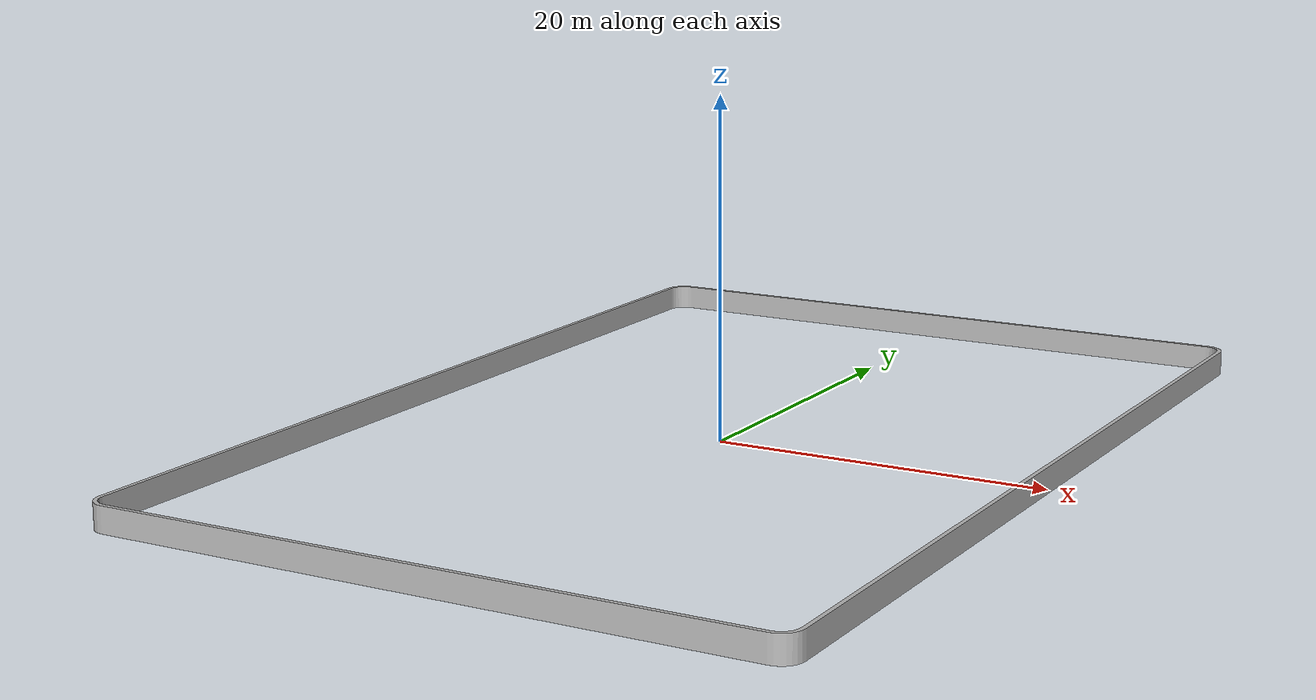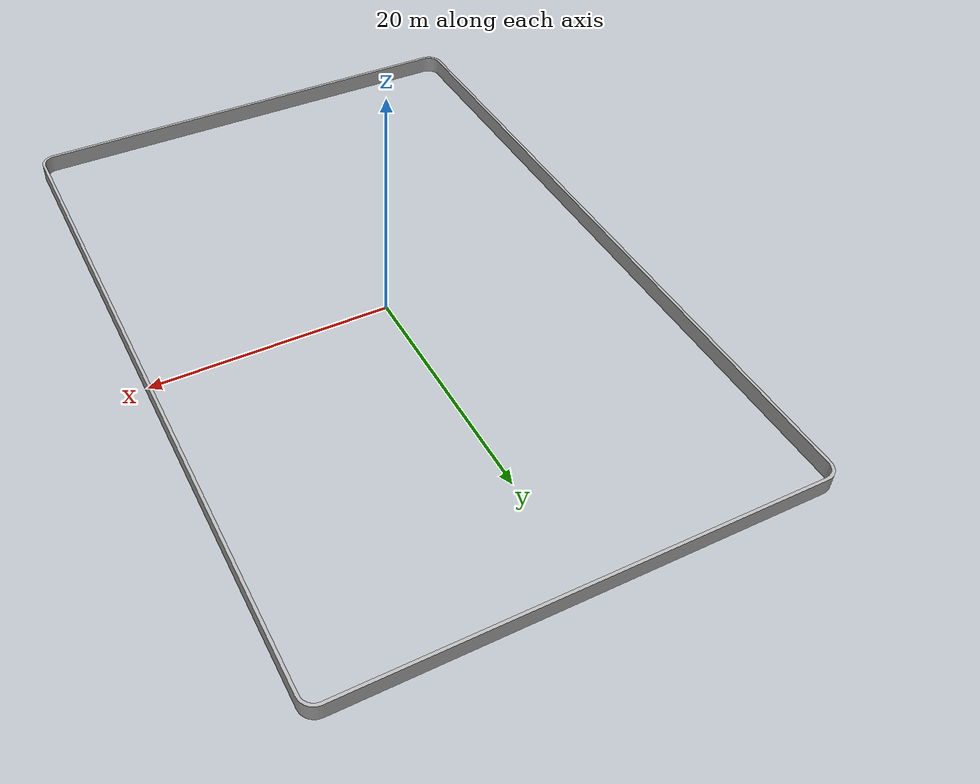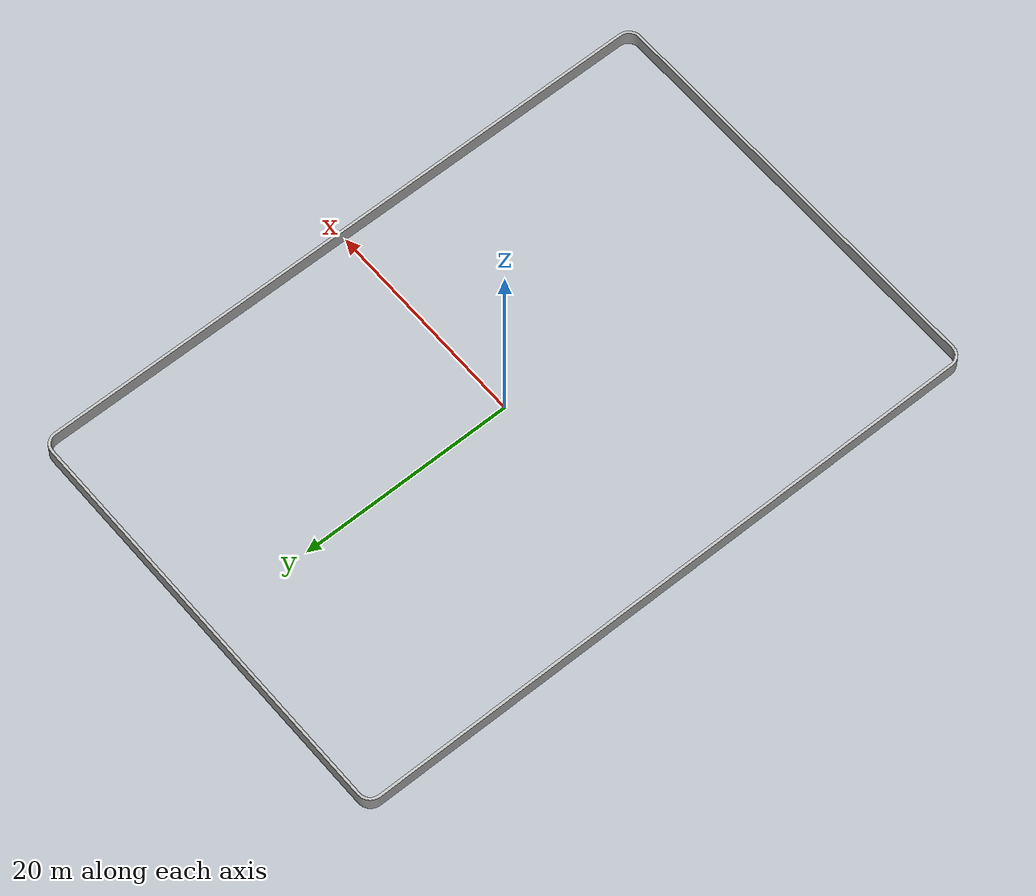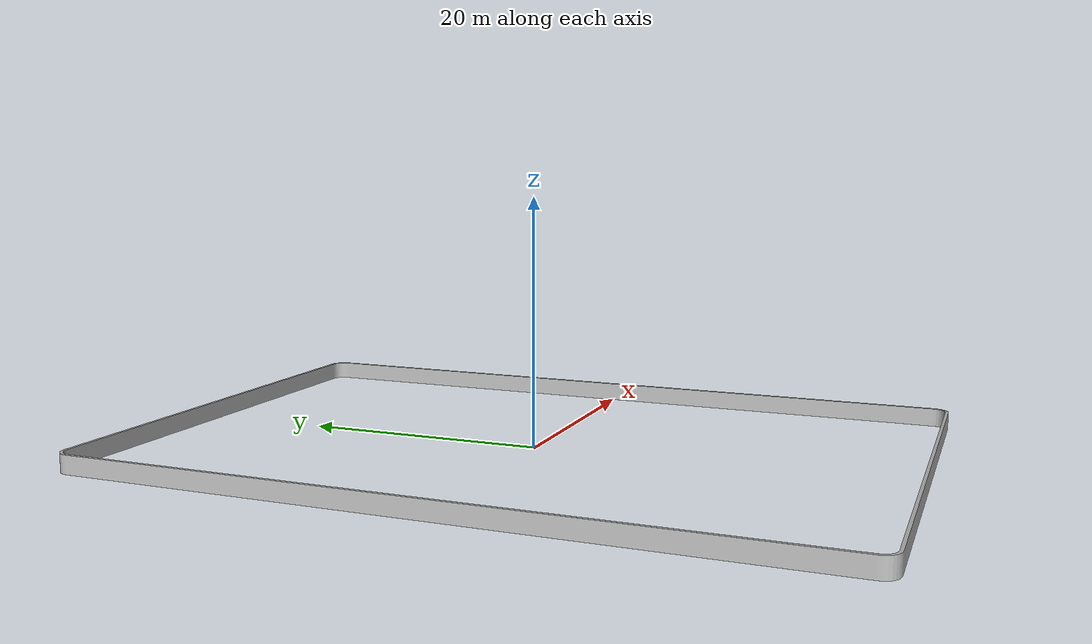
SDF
<?xml version="1.0" ?>
<sdf version="1.4">
  <model name="border">
    <static>true</static>
    <link name="link">
      <collision name="collision">
        <geometry>
          <mesh>
            <uri>model://border/meshes/border.DAE</uri>
          </mesh>
        </geometry>
      </collision>
      <visual name="visual">
        <cast_shadows>true</cast_shadows>
        <geometry>
          <mesh>
            <uri>model://border/meshes/border.DAE</uri>
          </mesh>
        </geometry>
        <material>
          <script>
            <uri>model://border/materials/scripts</uri>
            <uri>model://border/materials/textures</uri>
            <name>vrc/border</name>
          </script>
        </material>
      </visual>
    </link>
  </model>
</sdf>
